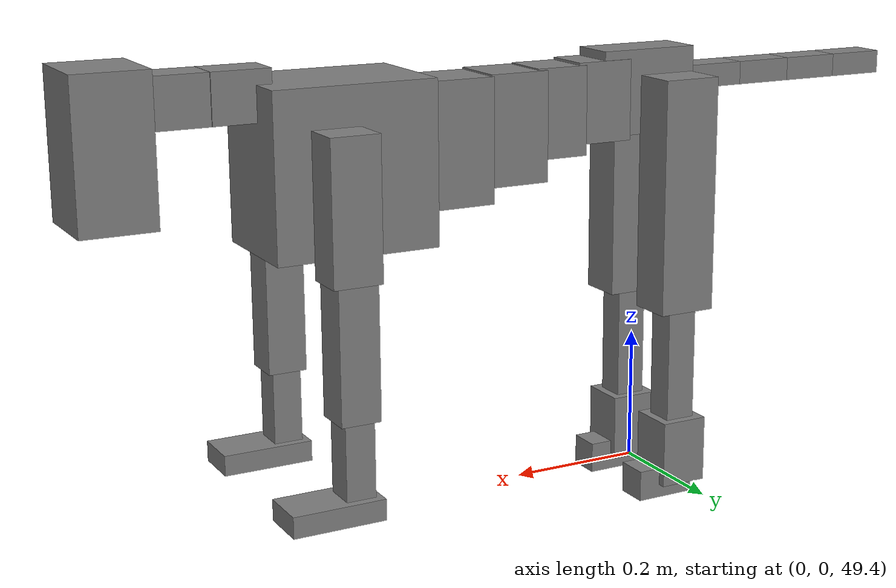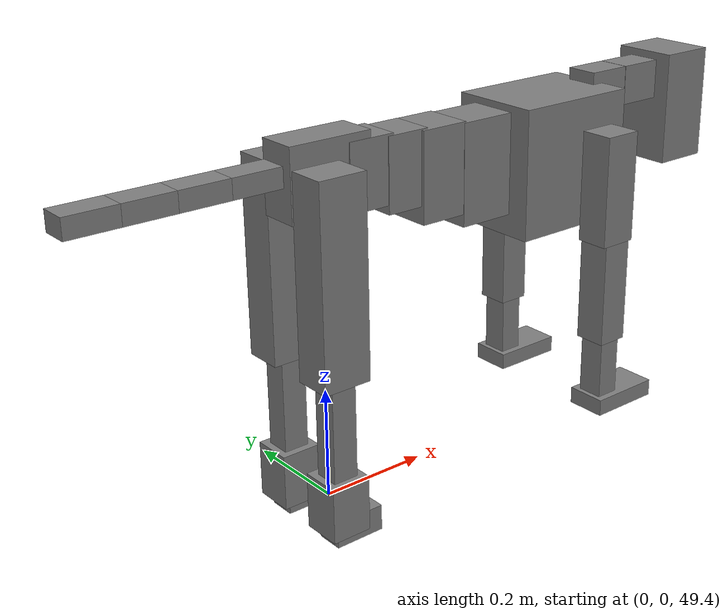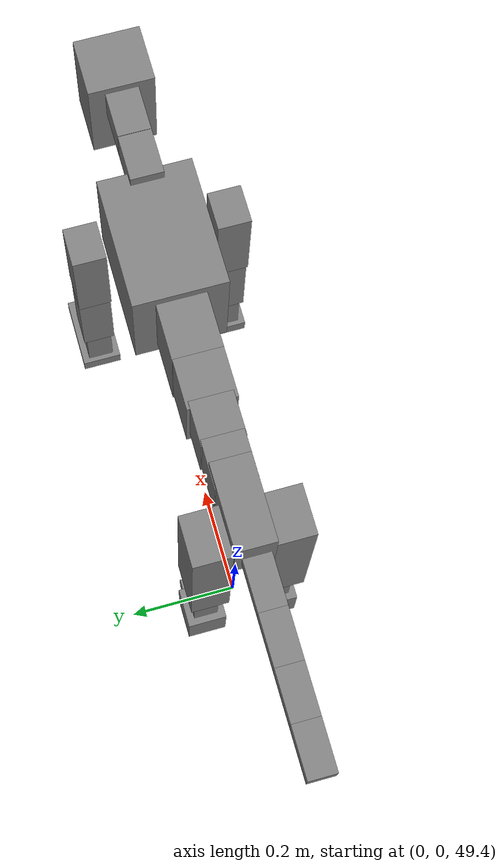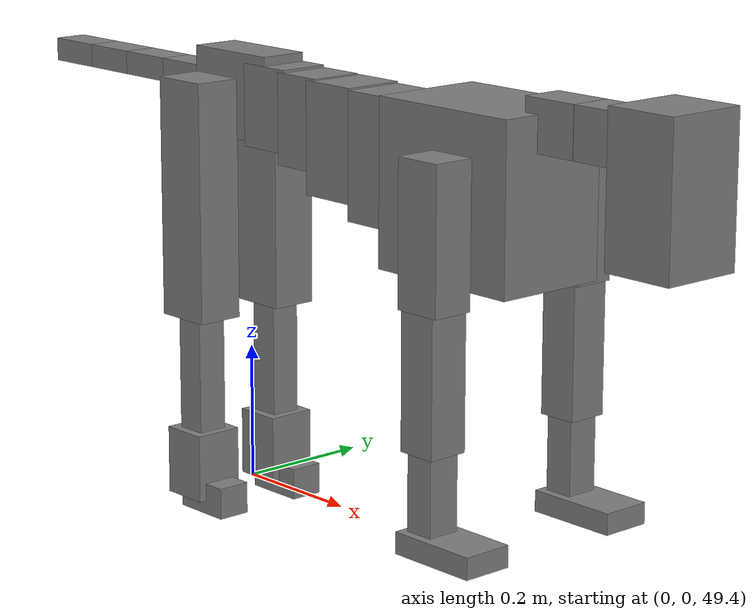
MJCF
<mujoco model="dog">

    <default>
        <joint armature="0.02" stiffness="1" damping="0.2" limited="true"/>
        <geom condim="3" friction="1 0.05 0.05" margin="0.01"/>
        <motor ctrllimited="true" ctrlrange="-1.0 1.0" forcelimited="true" gear="50"/>
    </default>

    <compiler inertiafromgeom="true" angle="radian"/>

    <option timestep="0.016" iterations="50" tolerance="1e-10" solver="Newton" jacobian="dense" cone="pyramidal"/>

    <size nconmax="20000" njmax="60000" nstack="5000000"/>
    <visual>
        <map force="0.1" zfar="30"/>
        <rgba haze="0.15 0.25 0.35 1"/>
        <quality shadowsize="2048"/>
        <global offwidth="800" offheight="800"/>
    </visual>

    <asset>
        <texture type="skybox" builtin="gradient" rgb1="0.3 0.5 0.7" rgb2="0 0 0" width="512" height="512"/>
        <texture name="texplane" type="2d" builtin="checker" rgb1=".2 .3 .4" rgb2=".1 0.15 0.2" width="512" height="512"
                 mark="cross" markrgb=".8 .8 .8"/>
        <texture name="texgeom" type="cube" builtin="flat" mark="cross" width="127" height="1278" rgb1="0.8 0.6 0.4"
                 rgb2="0.8 0.6 0.4" markrgb="1 1 1" random="0.01"/>

        <material name="matplane" reflectance="0.3" texture="texplane" texrepeat="1 1" texuniform="true"/>
        <material name="matgeom" texture="texgeom" texuniform="true" rgba="0.8 0.6 .4 1"/>
    </asset>

    <worldbody>
        <geom name="floor" pos="0 0 0" size="0 0 .25" type="plane" material="matplane" condim="3"/>

        <light directional="false" diffuse=".2 .2 .2" specular="0 0 0" pos="0 0 5" dir="0 0 -1" castshadow="false"/>
        <light mode="targetbodycom" target="torso" directional="false" diffuse=".8 .8 .8" specular="0.3 0.3 0.3"
               pos="0 0 4.0" dir="0 0 -1"/>

        <body name="root" pos="0 0 50">
            <freejoint name="root_1"/>
            <geom type="box" pos="0 0 -0.02" size="0.0774  0.0358  0.063" density="2030"/>

            <body name="spine1" pos="0.054 0 0">
                <joint name="spine1_y" axis="0 1 0" range="0 0.7" limited="true"/>
                <geom type="box" pos="0.02375 0 -0.03" size="0.04375  0.0375  0.05985" density="2030"/>

                <body name="spine2" pos="0.0612 0 0">
                    <joint name="spine2_y" axis="0 1 0" range="-0.15 0.15" limited="true"/>
                    <geom type="box" pos="0.03555  0  -0.04" size="0.04055  0.039  0.06615" density="2030"/>

                    <body name="spine3" pos="0.0730 0 0">
                        <joint name="spine3_y" axis="0 1 0" range="-0.15 0.15" limited="true"/>
                        <geom type="box" pos="0.03555  0  -0.057" size="0.04555  0.0445  0.081" density="2030"/>

                        <body name="spine4" pos="0.0780 0 0">
                            <joint name="spine4_y" axis="0 1 0" range="-0.15 0.15" limited="true"/>
                            <geom type="box" pos="0.05265  0  -0.07" size="0.05265  0.045  0.09135" density="2030"/>

                            <body name="torso" pos="0.1082 0 0">
                                <joint name="torso_y" axis="0 1 0" range="-0.15 0.15" limited="true"/>
                                <geom type="box" pos="0.11925  0  -0.085" size="0.11925  0.085  0.11745"
                                      density="2030"/>

                                <body name="neck1" pos="0.2160  0   0.0180">
                                    <joint name="neck1_y" axis="0 1 0" range="-1.2  -1" limited="true"/>
                                    <geom type="box" pos="0.0423  0  0" size="0.0423  0.03  0.036" density="2325"/>

                                    <body name="neck2" pos="0.0853  0  0">
                                        <joint name="neck2_y" axis="0 1 0" range="0.1  0" limited="true"/>
                                        <geom type="box" pos="0.0423  0  0" size="0.0423  0.03  0.036" density="2325"/>

                                        <body name="head" pos="0.0853  0  0">
                                            <joint name="head_y" axis="0 1 0" range="-0.3  -0.2" limited="true"/>
                                            <geom type="box" pos="0.0531  0  -0.055" size="0.0531  0.06  0.1044"
                                                  density="4030"/>

                                        </body>
                                    </body>
                                </body>

                                <body name="front_shoulder" pos="0.156  0   -0.0480">
                                    <joint name="front_shoulder_y" axis="0 1 0" range="-1 1.5" limited="true"/>
                                    <geom type="box" pos="0 0.13 -0.0739" size="0.0356  0.0304  0.1005" density="1158"/>
                                    <geom type="box" pos="0 -0.13 -0.0739" size="0.0356  0.0304  0.1005"
                                          density="1158"/>

                                    <body name="front_elbow" pos="0  0  -0.1478">
                                        <joint name="front_elbow_y" axis="0 1 0" range="-2 0" limited="true"/>
                                        <geom type="box" pos="0 0.13 -0.1082" size="0.0290  0.0297  0.1082"
                                              density="1081"/>
                                        <geom type="box" pos="0 -0.13 -0.1082" size="0.0290  0.0297  0.1082"
                                              density="1081"/>

                                        <body name="front_wrist" pos="0  0  -0.2163">
                                            <joint name="front_wrist_y" axis="0 1 0" range="-0.2 0" limited="true"/>
                                            <geom type="box" pos="0 0.13 -0.0618" size="0.0216  0.0240  0.0749"
                                                  density="1664"/>
                                            <geom type="box" pos="0 -0.13 -0.0618" size="0.0216  0.0240  0.0749"
                                                  density="1664"/>

                                            <body name="front_finger_end" pos="0  0  -0.1235">
                                                <joint name="front_finger_y" axis="0 1 0" range="-0.4 1"
                                                       limited="true"/>
                                                <geom type="box" pos="0.0369  0.13  -0.0004"
                                                      size="0.0677  0.0369  0.0154" density="1515"/>
                                                <geom type="box" pos="0.0369  -0.13  -0.0004"
                                                      size="0.0677  0.0369  0.0154" density="1515"/>

                                            </body>

                                        </body>
                                    </body>
                                </body>

                            </body>
                        </body>
                    </body>
                </body>
            </body>

            <body name="back_hip" pos="-0.03 0 -0.018">
                <joint name="back_hip_y" axis="0 1 0" range="-1.5 0.3" limited="true"/>
                <geom type="box" pos="0 0.07 -0.1534" size="0.0446  0.0350  0.1762" density="1154"/>
                <geom type="box" pos="0 -0.07 -0.1534" size="0.0446  0.0350  0.1762" density="1154"/>

                <body name="back_knee" pos="0  0  -0.3067">
                    <joint name="back_knee_y" axis="0 1 0" range="0 2.8" limited="true"/>
                    <geom type="box" pos="0 0.07 -0.1025" size="0.0232  0.0228  0.1181" density="1227"/>
                    <geom type="box" pos="0 -0.07 -0.1025" size="0.0232  0.0228  0.1181" density="1227"/>

                    <body name="back_ankle" pos="0  0  -0.2051">
                        <joint name="back_ankle_y" axis="0 1 0" range="-2.2 0" limited="true"/>
                        <geom type="box" pos="0 0.07 -0.0391" size="0.0365  0.0365  0.0503" density="1284"/>
                        <geom type="box" pos="0 -0.07 -0.0391" size="0.0365  0.0365  0.0503" density="1284"/>

                        <body name="back_toe_end" pos="0  0  -0.0781">
                            <joint name="back_toe_y" axis="0 1 0" range="-0.4 1" limited="true"/>
                            <geom type="box" pos="0.0250  0.07  -0.0083" size="0.0458  0.0250  0.0233" density="1515"/>
                            <geom type="box" pos="0.0250  -0.07  -0.0083" size="0.0458  0.0250  0.0233" density="1515"/>

                        </body>
                    </body>
                </body>
            </body>

            <body name="tail1" pos="-0.074 0 -0.006">
                <joint name="tail1_y" axis="0 1 0" range="-0.2 0.2" limited="true"/>
                <geom type="box" pos="-0.0536  0  0" size="0.045  0.025  0.0175" density="1587"/>

                <body name="tail2" pos="-0.09 0 0">
                    <joint name="tail2_y" axis="0 1 0" range="-0.2 0.2" limited="true"/>
                    <geom type="box" pos="-0.0536  0  0" size="0.045  0.025  0.0175" density="1587"/>

                    <body name="tail3" pos="-0.09 0 0">
                        <joint name="tail3_y" axis="0 1 0" range="-0.2 0.2" limited="true"/>
                        <geom type="box" pos="-0.0536  0  0" size="0.045  0.025  0.0175" density="1587"/>

                        <body name="tail4" pos="-0.09 0 0">
                            <joint name="tail4_y" axis="0 1 0" range="-0.2 0.2" limited="true"/>
                            <geom type="box" pos="-0.0536  0  0" size="0.045  0.025  0.0175" density="1587"/>

                        </body>
                    </body>
                </body>
            </body>
        </body>
    </worldbody>

    <actuator>
        <motor joint="spine1_y" forcerange="-150 150     "/>
        <motor joint="spine2_y" forcerange="-150 150     "/>
        <motor joint="spine3_y" forcerange="-150 150     "/>
        <motor joint="spine4_y" forcerange="-150 150     "/>
        <motor joint="torso_y" forcerange="-150 150     "/>
        <motor joint="neck1_y" forcerange="-100 100       "/>
        <motor joint="neck2_y" forcerange="-100 100       "/>
        <motor joint="head_y" forcerange="-150 150       "/>
        <motor joint="front_shoulder_y" forcerange="-183.66 118.98"/>
        <motor joint="front_elbow_y" forcerange="-135.05 180.91"/>
        <motor joint="front_wrist_y" forcerange="-137.43 54.70"/>
        <motor joint="front_finger_y" forcerange="-90.38 66.62"/>
        <motor joint="back_hip_y" forcerange="-365.88 300.22"/>
        <motor joint="back_knee_y" forcerange="-209.68 322.28"/>
        <motor joint="back_angle_y" forcerange="-240.80 242.94"/>
        <motor joint="back_toe_y" forcerange="-74.06 45.69"/>
        <motor joint="tail1_y" forcerange="-50 50     "/>
        <motor joint="tail2_y" forcerange="-50 50     "/>
        <motor joint="tail3_y" forcerange="-50 50     "/>
        <motor joint="tail4_y" forcerange="-50 50     "/>
    </actuator>
</mujoco>
